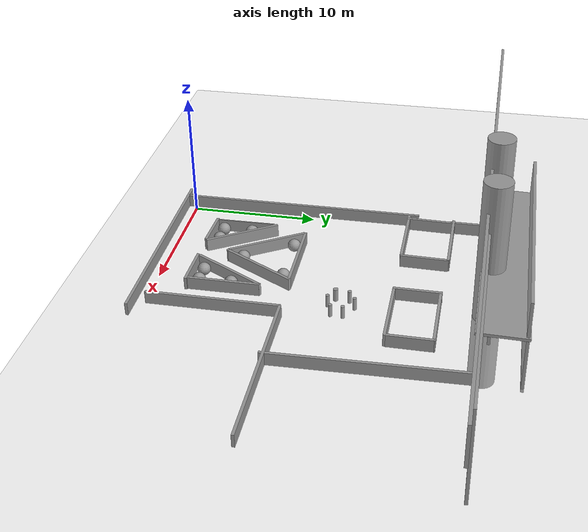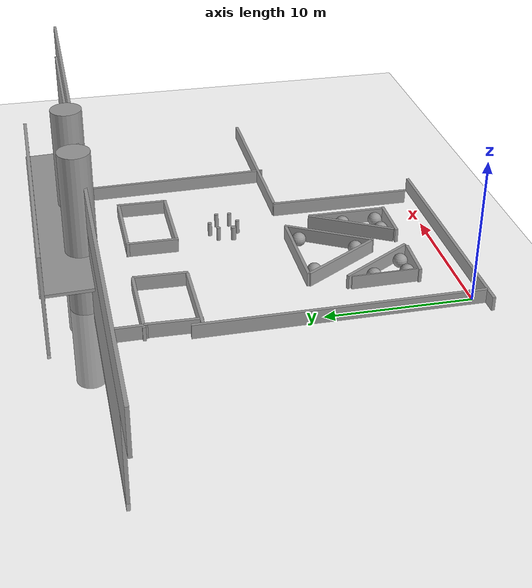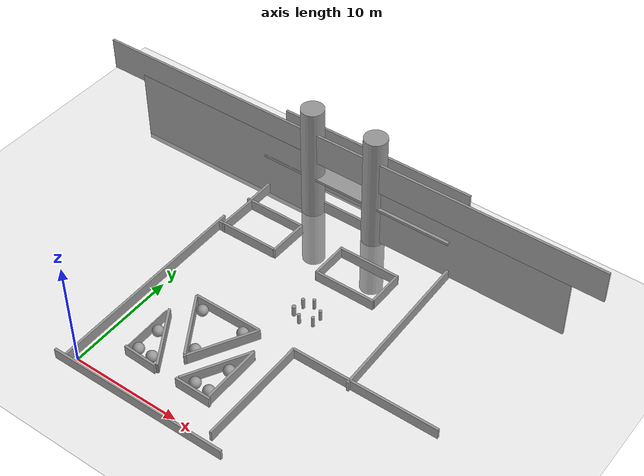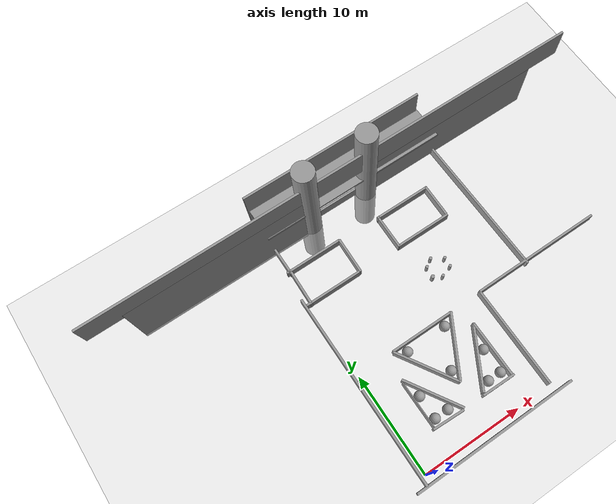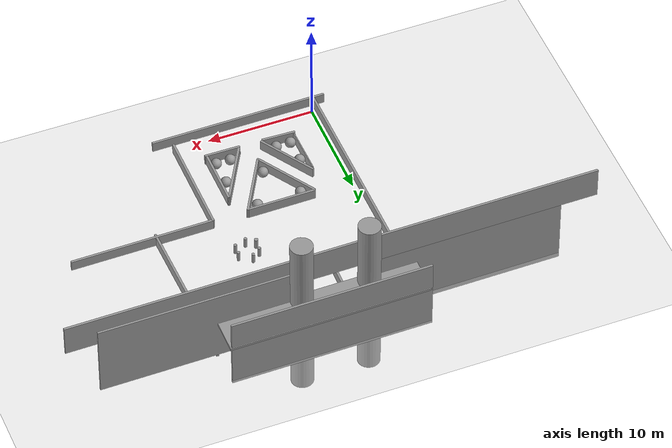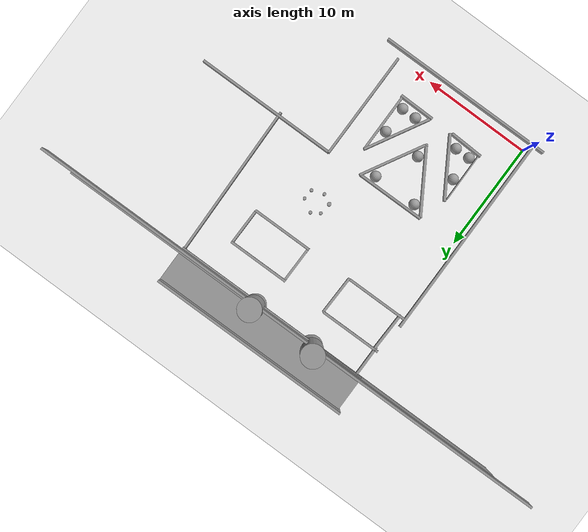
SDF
<sdf version="1.6">
 <world name="default">
  <light name="sun" type="directional">
   <pose>0 0 10 0 -0 0</pose>
   <diffuse>0.8 0.8 0.8 1</diffuse>
   <specular>0.1 0.1 0.1 1</specular>
   <attenuation>
    <range>1000</range>
    <constant>0.9</constant>
    <linear>0.01</linear>
    <quadratic>0.001</quadratic>
   </attenuation>
   <direction>-0.5 0.5 -1</direction>
  </light>
  <model name="ground_plane">
   <static>1</static>
   <link name="link">
    <collision name="collision">
     <geometry><plane><normal>0 0 1</normal><size>100 100</size></plane></geometry>
     <surface><friction><ode><mu>100</mu><mu2>50</mu2></ode></friction></surface>
    </collision>
    <visual name="visual">
     <cast_shadows>0</cast_shadows>
     <geometry><plane><normal>0 0 1</normal><size>100 100</size></plane></geometry>
     <material>
      <script><uri>file://media/materials/scripts/gazebo.material</uri><name>Gazebo/Grey</name></script>
     </material>
    </visual>
   </link>
  </model>
  <gravity>0 0 -9.8</gravity>
  <magnetic_field>6e-06 2.3e-05 -4.2e-05</magnetic_field>
  <atmosphere type="adiabatic"/>
  <physics name="default_physics" default="0" type="ode">
   <max_step_size>0.001</max_step_size>
   <real_time_factor>1</real_time_factor>
   <real_time_update_rate>1000</real_time_update_rate>
  </physics>
  <scene><ambient>0.4 0.4 0.4 1</ambient><background>0.7 0.7 0.7 1</background><shadows>1</shadows></scene>
  <spherical_coordinates>
   <surface_model>EARTH_WGS84</surface_model>
   <latitude_deg>0</latitude_deg>
   <longitude_deg>0</longitude_deg>
   <elevation>0</elevation>
   <heading_deg>0</heading_deg>
  </spherical_coordinates>
  <model name="unit_box_0_0">
   <pose>2.81156 5.0506 0.498574 -1.2e-05 0.000622 -1.56139</pose>
   <link name="unit_box_0_0::unit_box_0_0::link">
    <inertial>
     <mass>1</mass>
     <inertia>
      <ixx>0.166667</ixx>
      <ixy>0</ixy>
      <ixz>0</ixz>
      <iyy>0.166667</iyy>
      <iyz>0</iyz>
      <izz>0.166667</izz>
     </inertia>
    </inertial>
    <collision name="collision"><geometry><box><size>4.58926 0.099083 1</size></box></geometry></collision>
    <visual name="visual">
     <geometry><box><size>4.58926 0.099083 1</size></box></geometry>
     <material>
      <script><name>Gazebo/Grey</name><uri>file://media/materials/scripts/gazebo.material</uri></script>
     </material>
    </visual>
   </link>
  </model>
  <model name="unit_box_0_0_clone_0">
   <pose>6.80353 -0.769381 0.519734 0 0 -1.56499</pose>
   <link name="unit_box_0_0::link">
    <inertial>
     <mass>1</mass>
     <inertia>
      <ixx>0.166667</ixx>
      <ixy>0</ixy>
      <ixz>0</ixz>
      <iyy>0.166667</iyy>
      <iyz>0</iyz>
      <izz>0.166667</izz>
     </inertia>
    </inertial>
    <collision name="collision"><geometry><box><size>0.217901 16.6093 1</size></box></geometry></collision>
    <visual name="visual">
     <geometry><box><size>0.217901 16.6093 1</size></box></geometry>
     <material>
      <script><name>Gazebo/Grey</name><uri>file://media/materials/scripts/gazebo.material</uri></script>
     </material>
    </visual>
    <kinematic>1</kinematic>
   </link>
  </model>
  <model name="unit_box_0_0_clone_0_clone">
   <pose>4.23661 2.59025 0.499912 -3.1e-05 -1e-06 -1.60929</pose>
   <link name="unit_box_0_0_clone_0_clone::unit_box_0_0::link">
    <inertial>
     <mass>1</mass>
     <inertia>
      <ixx>0.166667</ixx>
      <ixy>0</ixy>
      <ixz>0</ixz>
      <iyy>0.166667</iyy>
      <iyz>0</iyz>
      <izz>0.166667</izz>
     </inertia>
    </inertial>
    <collision name="collision"><geometry><box><size>0.217901 3.14923 1</size></box></geometry></collision>
    <visual name="visual">
     <geometry><box><size>0.217901 3.14923 1</size></box></geometry>
     <material>
      <script><name>Gazebo/Grey</name><uri>file://media/materials/scripts/gazebo.material</uri></script>
     </material>
    </visual>
   </link>
  </model>
  <model name="unit_box_0_0_clone_0_clone_clone">
   <pose>-0.478675 8.91503 0.519734 0 0 -3.13891</pose>
   <link name="unit_box_0_0::link">
    <inertial>
     <mass>1</mass>
     <inertia>
      <ixx>0.166667</ixx>
      <ixy>0</ixy>
      <ixz>0</ixz>
      <iyy>0.166667</iyy>
      <iyz>0</iyz>
      <izz>0.166667</izz>
     </inertia>
    </inertial>
    <collision name="collision"><geometry><box><size>0.217901 19.3756 1</size></box></geometry></collision>
    <visual name="visual">
     <geometry><box><size>0.217901 19.3756 1</size></box></geometry>
     <material>
      <script><name>Gazebo/Grey</name><uri>file://media/materials/scripts/gazebo.material</uri></script>
     </material>
    </visual>
    <kinematic>1</kinematic>
   </link>
  </model>
  <model name="unit_box_0_0_clone_0_clone_clone_0">
   <pose>4.40745 5.11939 0.519734 0 0 -2.58727</pose>
   <link name="unit_box_0_0::link">
    <inertial>
     <mass>1</mass>
     <inertia>
      <ixx>0.166667</ixx>
      <ixy>0</ixy>
      <ixz>0</ixz>
      <iyy>0.166667</iyy>
      <iyz>0</iyz>
      <izz>0.166667</izz>
     </inertia>
    </inertial>
    <collision name="collision"><geometry><box><size>0.217901 5.88443 1</size></box></geometry></collision>
    <visual name="visual">
     <geometry><box><size>0.217901 5.88443 1</size></box></geometry>
     <material>
      <script><name>Gazebo/Grey</name><uri>file://media/materials/scripts/gazebo.material</uri></script>
     </material>
    </visual>
    <kinematic>1</kinematic>
   </link>
  </model>
  <model name="unit_box_0_0_clone_0_clone_clone_1">
   <pose>9.61184 2.52379 0.499686 0.000187 7e-06 -1.58173</pose>
   <link name="unit_box_0_0_clone_0_clone_clone_1::unit_box_0_0_clone_0_clone_clone_1::unit_box_0_0::link">
    <inertial>
     <mass>1</mass>
     <inertia>
      <ixx>0.166667</ixx>
      <ixy>0</ixy>
      <ixz>0</ixz>
      <iyy>0.166667</iyy>
      <iyz>0</iyz>
      <izz>0.166667</izz>
     </inertia>
    </inertial>
    <collision name="collision"><geometry><box><size>0.217901 3.36078 1</size></box></geometry></collision>
    <visual name="visual">
     <geometry><box><size>0.217901 3.36078 1</size></box></geometry>
     <material>
      <script><name>Gazebo/Grey</name><uri>file://media/materials/scripts/gazebo.material</uri></script>
     </material>
    </visual>
   </link>
  </model>
  <model name="unit_box_0_0_clone_0_clone_clone_0_clone">
   <pose>9.6108 5.42741 0.519734 0 -0 2.63398</pose>
   <link name="unit_box_0_0::link">
    <inertial>
     <mass>1</mass>
     <inertia>
      <ixx>0.166667</ixx>
      <ixy>0</ixy>
      <ixz>0</ixz>
      <iyy>0.166667</iyy>
      <iyz>0</iyz>
      <izz>0.166667</izz>
     </inertia>
    </inertial>
    <collision name="collision"><geometry><box><size>0.217901 6.22253 1</size></box></geometry></collision>
    <visual name="visual">
     <geometry><box><size>0.217901 6.22253 1</size></box></geometry>
     <material>
      <script><name>Gazebo/Grey</name><uri>file://media/materials/scripts/gazebo.material</uri></script>
     </material>
    </visual>
    <kinematic>1</kinematic>
   </link>
  </model>
  <model name="unit_box_0_0_clone_0_clone_clone_clone">
   <pose>11.1135 5.36011 0.519734 0 0 -3.13891</pose>
   <link name="unit_box_0_0::link">
    <inertial>
     <mass>1</mass>
     <inertia>
      <ixx>0.166667</ixx>
      <ixy>0</ixy>
      <ixz>0</ixz>
      <iyy>0.166667</iyy>
      <iyz>0</iyz>
      <izz>0.166667</izz>
     </inertia>
    </inertial>
    <collision name="collision"><geometry><box><size>0.217901 5.47289 1</size></box></geometry></collision>
    <visual name="visual">
     <geometry><box><size>0.217901 5.47289 1</size></box></geometry>
     <material>
      <script><name>Gazebo/Grey</name><uri>file://media/materials/scripts/gazebo.material</uri></script>
     </material>
    </visual>
    <kinematic>1</kinematic>
   </link>
  </model>
  <model name="unit_box_0_0_clone_0_clone_clone_0_clone_0">
   <pose>5.30651 7.35911 0.519734 0 0 -2.58727</pose>
   <link name="unit_box_0_0::link">
    <inertial>
     <mass>1</mass>
     <inertia>
      <ixx>0.166667</ixx>
      <ixy>0</ixy>
      <ixz>0</ixz>
      <iyy>0.166667</iyy>
      <iyz>0</iyz>
      <izz>0.166667</izz>
     </inertia>
    </inertial>
    <collision name="collision"><geometry><box><size>0.217901 6.22253 1</size></box></geometry></collision>
    <visual name="visual">
     <geometry><box><size>0.217901 6.22253 1</size></box></geometry>
     <material>
      <script><name>Gazebo/Grey</name><uri>file://media/materials/scripts/gazebo.material</uri></script>
     </material>
    </visual>
    <kinematic>1</kinematic>
   </link>
  </model>
  <model name="unit_box_0_0_clone_0_clone_clone_0_clone_clone">
   <pose>8.58458 7.43206 0.519734 0 -0 2.63398</pose>
   <link name="unit_box_0_0::link">
    <inertial>
     <mass>1</mass>
     <inertia>
      <ixx>0.166667</ixx>
      <ixy>0</ixy>
      <ixz>0</ixz>
      <iyy>0.166667</iyy>
      <iyz>0</iyz>
      <izz>0.166667</izz>
     </inertia>
    </inertial>
    <collision name="collision"><geometry><box><size>0.217901 6.22253 1</size></box></geometry></collision>
    <visual name="visual">
     <geometry><box><size>0.217901 6.22253 1</size></box></geometry>
     <material>
      <script><name>Gazebo/Grey</name><uri>file://media/materials/scripts/gazebo.material</uri></script>
     </material>
    </visual>
    <kinematic>1</kinematic>
   </link>
  </model>
  <model name="unit_cylinder_0">
   <pose>7.00457 4.66781 0.494908 4e-06 3.2e-05 0.119616</pose>
   <link name="unit_cylinder_0::link">
    <inertial>
     <mass>1</mass>
     <inertia><ixx>0.145833</ixx><ixy>0</ixy><ixz>0</ixz><iyy>0.145833</iyy><iyz>0</iyz><izz>0.125</izz></inertia>
    </inertial>
    <collision name="collision">
     <geometry><cylinder><radius>0.129951</radius><length>1</length></cylinder></geometry>
    </collision>
    <visual name="visual">
     <geometry><cylinder><radius>0.129951</radius><length>1</length></cylinder></geometry>
     <material>
      <script><name>Gazebo/Grey</name><uri>file://media/materials/scripts/gazebo.material</uri></script>
     </material>
    </visual>
    <kinematic>1</kinematic>
   </link>
  </model>
  <model name="unit_box_0_0_clone_0_clone_0">
   <pose>6.82149 10.0717 0.519734 0 0 -1.56499</pose>
   <link name="unit_box_0_0::link">
    <inertial>
     <mass>1</mass>
     <inertia>
      <ixx>0.166667</ixx>
      <ixy>0</ixy>
      <ixz>0</ixz>
      <iyy>0.166667</iyy>
      <iyz>0</iyz>
      <izz>0.166667</izz>
     </inertia>
    </inertial>
    <collision name="collision"><geometry><box><size>0.217901 6.35573 1</size></box></geometry></collision>
    <visual name="visual">
     <geometry><box><size>0.217901 6.35573 1</size></box></geometry>
     <material>
      <script><name>Gazebo/Grey</name><uri>file://media/materials/scripts/gazebo.material</uri></script>
     </material>
    </visual>
    <kinematic>1</kinematic>
   </link>
  </model>
  <model name="unit_box_0_0_clone">
   <pose>13.3879 5.15517 0.519734 0 -0 0</pose>
   <link name="unit_box_0_0::link">
    <inertial>
     <mass>1</mass>
     <inertia>
      <ixx>0.166667</ixx>
      <ixy>0</ixy>
      <ixz>0</ixz>
      <iyy>0.166667</iyy>
      <iyz>0</iyz>
      <izz>0.166667</izz>
     </inertia>
    </inertial>
    <collision name="collision"><geometry><box><size>0.217901 10.0929 1</size></box></geometry></collision>
    <visual name="visual">
     <geometry><box><size>0.217901 10.0929 1</size></box></geometry>
     <material>
      <script><name>Gazebo/Grey</name><uri>file://media/materials/scripts/gazebo.material</uri></script>
     </material>
    </visual>
    <kinematic>1</kinematic>
   </link>
  </model>
  <model name="unit_sphere_0">
   <pose>4.78357 9.37219 0.5 -0.01173 0.009222 -0.001407</pose>
   <link name="link">
    <inertial>
     <mass>1</mass>
     <inertia><ixx>0.1</ixx><ixy>0</ixy><ixz>0</ixz><iyy>0.1</iyy><iyz>0</iyz><izz>0.1</izz></inertia>
    </inertial>
    <collision name="collision"><geometry><sphere><radius>0.5</radius></sphere></geometry></collision>
    <visual name="visual">
     <geometry><sphere><radius>0.5</radius></sphere></geometry>
     <material>
      <script><name>Gazebo/Grey</name><uri>file://media/materials/scripts/gazebo.material</uri></script>
     </material>
    </visual>
   </link>
  </model>
  <model name="unit_sphere_1">
   <pose>8.90003 9.40731 0.5 0 -0 0</pose>
   <link name="link">
    <inertial>
     <mass>1</mass>
     <inertia><ixx>0.1</ixx><ixy>0</ixy><ixz>0</ixz><iyy>0.1</iyy><iyz>0</iyz><izz>0.1</izz></inertia>
    </inertial>
    <collision name="collision"><geometry><sphere><radius>0.5</radius></sphere></geometry></collision>
    <visual name="visual">
     <geometry><sphere><radius>0.5</radius></sphere></geometry>
     <material>
      <script><name>Gazebo/Grey</name><uri>file://media/materials/scripts/gazebo.material</uri></script>
     </material>
    </visual>
   </link>
  </model>
  <model name="unit_sphere_2">
   <pose>7.00291 5.85331 0.5 -0.010237 -0.009397 0.001189</pose>
   <link name="link">
    <inertial>
     <mass>1</mass>
     <inertia><ixx>0.1</ixx><ixy>0</ixy><ixz>0</ixz><iyy>0.1</iyy><iyz>0</iyz><izz>0.1</izz></inertia>
    </inertial>
    <collision name="collision"><geometry><sphere><radius>0.5</radius></sphere></geometry></collision>
    <visual name="visual">
     <geometry><sphere><radius>0.5</radius></sphere></geometry>
     <material>
      <script><name>Gazebo/Grey</name><uri>file://media/materials/scripts/gazebo.material</uri></script>
     </material>
    </visual>
   </link>
  </model>
  <model name="unit_sphere_3">
   <pose>3.37924 5.62335 0.5 1.12151 0.193173 0.135979</pose>
   <link name="link">
    <inertial>
     <mass>1</mass>
     <inertia><ixx>0.1</ixx><ixy>0</ixy><ixz>0</ixz><iyy>0.1</iyy><iyz>0</iyz><izz>0.1</izz></inertia>
    </inertial>
    <collision name="collision"><geometry><sphere><radius>0.5</radius></sphere></geometry></collision>
    <visual name="visual">
     <geometry><sphere><radius>0.5</radius></sphere></geometry>
     <material>
      <script><name>Gazebo/Grey</name><uri>file://media/materials/scripts/gazebo.material</uri></script>
     </material>
    </visual>
   </link>
  </model>
  <model name="unit_sphere_4">
   <pose>3.3785 3.32826 0.49999 0.006771 0.056704 0.020034</pose>
   <link name="link">
    <inertial>
     <mass>1</mass>
     <inertia><ixx>0.1</ixx><ixy>0</ixy><ixz>0</ixz><iyy>0.1</iyy><iyz>0</iyz><izz>0.1</izz></inertia>
    </inertial>
    <collision name="collision"><geometry><sphere><radius>0.5</radius></sphere></geometry></collision>
    <visual name="visual">
     <geometry><sphere><radius>0.5</radius></sphere></geometry>
     <material>
      <script><name>Gazebo/Grey</name><uri>file://media/materials/scripts/gazebo.material</uri></script>
     </material>
    </visual>
   </link>
  </model>
  <model name="unit_sphere_5">
   <pose>4.75326 3.34246 0.5 0 -0 0</pose>
   <link name="link">
    <inertial>
     <mass>1</mass>
     <inertia><ixx>0.1</ixx><ixy>0</ixy><ixz>0</ixz><iyy>0.1</iyy><iyz>0</iyz><izz>0.1</izz></inertia>
    </inertial>
    <collision name="collision"><geometry><sphere><radius>0.5</radius></sphere></geometry></collision>
    <visual name="visual">
     <geometry><sphere><radius>0.5</radius></sphere></geometry>
     <material>
      <script><name>Gazebo/Grey</name><uri>file://media/materials/scripts/gazebo.material</uri></script>
     </material>
    </visual>
   </link>
  </model>
  <model name="unit_sphere_6">
   <pose>10.5034 5.77939 0.5 0.069496 -0.019261 0.001034</pose>
   <link name="link">
    <inertial>
     <mass>1</mass>
     <inertia><ixx>0.1</ixx><ixy>0</ixy><ixz>0</ixz><iyy>0.1</iyy><iyz>0</iyz><izz>0.1</izz></inertia>
    </inertial>
    <collision name="collision"><geometry><sphere><radius>0.5</radius></sphere></geometry></collision>
    <visual name="visual">
     <geometry><sphere><radius>0.5</radius></sphere></geometry>
     <material>
      <script><name>Gazebo/Grey</name><uri>file://media/materials/scripts/gazebo.material</uri></script>
     </material>
    </visual>
   </link>
  </model>
  <model name="unit_sphere_7">
   <pose>9.15693 3.32517 0.5 -0.025136 -0.0004 -6.6e-05</pose>
   <link name="link">
    <inertial>
     <mass>1</mass>
     <inertia><ixx>0.1</ixx><ixy>0</ixy><ixz>0</ixz><iyy>0.1</iyy><iyz>0</iyz><izz>0.1</izz></inertia>
    </inertial>
    <collision name="collision"><geometry><sphere><radius>0.5</radius></sphere></geometry></collision>
    <visual name="visual">
     <geometry><sphere><radius>0.5</radius></sphere></geometry>
     <material>
      <script><name>Gazebo/Grey</name><uri>file://media/materials/scripts/gazebo.material</uri></script>
     </material>
    </visual>
   </link>
  </model>
  <model name="unit_sphere_8">
   <pose>10.5099 3.33272 0.5 -0.059354 -0.10207 0.127266</pose>
   <link name="link">
    <inertial>
     <mass>1</mass>
     <inertia><ixx>0.1</ixx><ixy>0</ixy><ixz>0</ixz><iyy>0.1</iyy><iyz>0</iyz><izz>0.1</izz></inertia>
    </inertial>
    <collision name="collision"><geometry><sphere><radius>0.5</radius></sphere></geometry></collision>
    <visual name="visual">
     <geometry><sphere><radius>0.5</radius></sphere></geometry>
     <material>
      <script><name>Gazebo/Grey</name><uri>file://media/materials/scripts/gazebo.material</uri></script>
     </material>
    </visual>
   </link>
  </model>
  <model name="unit_box_0_0_clone_0_clone_2">
   <pose>20.0607 10.2016 0.519734 0 0 -1.56499</pose>
   <link name="unit_box_0_0::link">
    <inertial>
     <mass>1</mass>
     <inertia>
      <ixx>0.166667</ixx>
      <ixy>0</ixy>
      <ixz>0</ixz>
      <iyy>0.166667</iyy>
      <iyz>0</iyz>
      <izz>0.166667</izz>
     </inertia>
    </inertial>
    <collision name="collision"><geometry><box><size>0.217901 13.3614 1</size></box></geometry></collision>
    <visual name="visual">
     <geometry><box><size>0.217901 13.3614 1</size></box></geometry>
     <material>
      <script><name>Gazebo/Grey</name><uri>file://media/materials/scripts/gazebo.material</uri></script>
     </material>
    </visual>
    <kinematic>1</kinematic>
   </link>
  </model>
  <model name="unit_cylinder_1_clone_2">
   <pose>10.6943 13.7274 0.482981 0 0 -1e-06</pose>
   <link name="unit_cylinder_1_clone_2::link">
    <inertial>
     <mass>1</mass>
     <inertia><ixx>0.145833</ixx><ixy>0</ixy><ixz>0</ixz><iyy>0.145833</iyy><iyz>0</iyz><izz>0.125</izz></inertia>
    </inertial>
    <collision name="collision">
     <geometry><cylinder><radius>0.183627</radius><length>1</length></cylinder></geometry>
    </collision>
    <visual name="visual">
     <geometry><cylinder><radius>0.183627</radius><length>1</length></cylinder></geometry>
     <material>
      <script><name>Gazebo/Grey</name><uri>file://media/materials/scripts/gazebo.material</uri></script>
     </material>
    </visual>
    <kinematic>1</kinematic>
   </link>
  </model>
  <model name="unit_cylinder_1_clone_2_clone">
   <pose>11.5409 13.277 0.482981 0 0 -1e-06</pose>
   <link name="unit_cylinder_1_clone_2::link">
    <inertial>
     <mass>1</mass>
     <inertia><ixx>0.145833</ixx><ixy>0</ixy><ixz>0</ixz><iyy>0.145833</iyy><iyz>0</iyz><izz>0.125</izz></inertia>
    </inertial>
    <collision name="collision">
     <geometry><cylinder><radius>0.146145</radius><length>1</length></cylinder></geometry>
    </collision>
    <visual name="visual">
     <geometry><cylinder><radius>0.146145</radius><length>1</length></cylinder></geometry>
     <material>
      <script><name>Gazebo/Grey</name><uri>file://media/materials/scripts/gazebo.material</uri></script>
     </material>
    </visual>
    <kinematic>1</kinematic>
   </link>
  </model>
  <model name="unit_cylinder_1_clone_2_clone_0">
   <pose>12.6409 13.668 0.482981 0 0 -1e-06</pose>
   <link name="unit_cylinder_1_clone_2::link">
    <inertial>
     <mass>1</mass>
     <inertia><ixx>0.145833</ixx><ixy>0</ixy><ixz>0</ixz><iyy>0.145833</iyy><iyz>0</iyz><izz>0.125</izz></inertia>
    </inertial>
    <collision name="collision">
     <geometry><cylinder><radius>0.146145</radius><length>1</length></cylinder></geometry>
    </collision>
    <visual name="visual">
     <geometry><cylinder><radius>0.146145</radius><length>1</length></cylinder></geometry>
     <material>
      <script><name>Gazebo/Grey</name><uri>file://media/materials/scripts/gazebo.material</uri></script>
     </material>
    </visual>
    <kinematic>1</kinematic>
   </link>
  </model>
  <model name="unit_cylinder_1_clone_2_clone_1">
   <pose>12.6988 14.5896 0.482981 0 0 -1e-06</pose>
   <link name="unit_cylinder_1_clone_2::link">
    <inertial>
     <mass>1</mass>
     <inertia><ixx>0.145833</ixx><ixy>0</ixy><ixz>0</ixz><iyy>0.145833</iyy><iyz>0</iyz><izz>0.125</izz></inertia>
    </inertial>
    <collision name="collision">
     <geometry><cylinder><radius>0.146145</radius><length>1</length></cylinder></geometry>
    </collision>
    <visual name="visual">
     <geometry><cylinder><radius>0.146145</radius><length>1</length></cylinder></geometry>
     <material>
      <script><name>Gazebo/Grey</name><uri>file://media/materials/scripts/gazebo.material</uri></script>
     </material>
    </visual>
    <kinematic>1</kinematic>
   </link>
  </model>
  <model name="unit_cylinder_1_clone_2_clone_2">
   <pose>11.5701 15.2714 0.482981 0 0 -1e-06</pose>
   <link name="unit_cylinder_1_clone_2::link">
    <inertial>
     <mass>1</mass>
     <inertia><ixx>0.145833</ixx><ixy>0</ixy><ixz>0</ixz><iyy>0.145833</iyy><iyz>0</iyz><izz>0.125</izz></inertia>
    </inertial>
    <collision name="collision">
     <geometry><cylinder><radius>0.146145</radius><length>1</length></cylinder></geometry>
    </collision>
    <visual name="visual">
     <geometry><cylinder><radius>0.146145</radius><length>1</length></cylinder></geometry>
     <material>
      <script><name>Gazebo/Grey</name><uri>file://media/materials/scripts/gazebo.material</uri></script>
     </material>
    </visual>
    <kinematic>1</kinematic>
   </link>
  </model>
  <model name="unit_cylinder_1_clone_2_clone_3">
   <pose>10.8098 14.7862 0.482981 0 0 -1e-06</pose>
   <link name="unit_cylinder_1_clone_2::link">
    <inertial>
     <mass>1</mass>
     <inertia><ixx>0.145833</ixx><ixy>0</ixy><ixz>0</ixz><iyy>0.145833</iyy><iyz>0</iyz><izz>0.125</izz></inertia>
    </inertial>
    <collision name="collision">
     <geometry><cylinder><radius>0.146145</radius><length>1</length></cylinder></geometry>
    </collision>
    <visual name="visual">
     <geometry><cylinder><radius>0.146145</radius><length>1</length></cylinder></geometry>
     <material>
      <script><name>Gazebo/Grey</name><uri>file://media/materials/scripts/gazebo.material</uri></script>
     </material>
    </visual>
    <kinematic>1</kinematic>
   </link>
  </model>
  <model name="unit_box_0_0_clone_0_clone_2_clone">
   <pose>12.6385 17.9268 0.519734 0 0 -1.56499</pose>
   <link name="unit_box_0_0::link">
    <inertial>
     <mass>1</mass>
     <inertia>
      <ixx>0.166667</ixx>
      <ixy>0</ixy>
      <ixz>0</ixz>
      <iyy>0.166667</iyy>
      <iyz>0</iyz>
      <izz>0.166667</izz>
     </inertia>
    </inertial>
    <collision name="collision"><geometry><box><size>0.217901 5.69785 1</size></box></geometry></collision>
    <visual name="visual">
     <geometry><box><size>0.217901 5.69785 1</size></box></geometry>
     <material>
      <script><name>Gazebo/Grey</name><uri>file://media/materials/scripts/gazebo.material</uri></script>
     </material>
    </visual>
    <kinematic>1</kinematic>
   </link>
  </model>
  <model name="unit_box_0_0_clone_0_clone_2_clone_clone">
   <pose>2.48911 17.8697 0.519734 0 0 -1.56499</pose>
   <link name="unit_box_0_0::link">
    <inertial>
     <mass>1</mass>
     <inertia>
      <ixx>0.166667</ixx>
      <ixy>0</ixy>
      <ixz>0</ixz>
      <iyy>0.166667</iyy>
      <iyz>0</iyz>
      <izz>0.166667</izz>
     </inertia>
    </inertial>
    <collision name="collision"><geometry><box><size>0.217901 5.79612 1</size></box></geometry></collision>
    <visual name="visual">
     <geometry><box><size>0.217901 5.79612 1</size></box></geometry>
     <material>
      <script><name>Gazebo/Grey</name><uri>file://media/materials/scripts/gazebo.material</uri></script>
     </material>
    </visual>
    <kinematic>1</kinematic>
   </link>
  </model>
  <model name="unit_box_0_0_clone_0_clone_2_clone_clone_clone">
   <pose>0.072625 22.6573 0.519734 0 0 -3.13994</pose>
   <link name="unit_box_0_0::link">
    <inertial>
     <mass>1</mass>
     <inertia>
      <ixx>0.166667</ixx>
      <ixy>0</ixy>
      <ixz>0</ixz>
      <iyy>0.166667</iyy>
      <iyz>0</iyz>
      <izz>0.166667</izz>
     </inertia>
    </inertial>
    <collision name="collision"><geometry><box><size>0.217901 2.86776 1</size></box></geometry></collision>
    <visual name="visual">
     <geometry><box><size>0.217901 2.86776 1</size></box></geometry>
     <material>
      <script><name>Gazebo/Grey</name><uri>file://media/materials/scripts/gazebo.material</uri></script>
     </material>
    </visual>
    <kinematic>1</kinematic>
   </link>
  </model>
  <model name="unit_box_0_0_clone_0_clone_2_clone_clone_clone_0">
   <pose>2.66417 21.4811 0.519734 0 0 -1.56499</pose>
   <link name="unit_box_0_0::link">
    <inertial>
     <mass>1</mass>
     <inertia>
      <ixx>0.166667</ixx>
      <ixy>0</ixy>
      <ixz>0</ixz>
      <iyy>0.166667</iyy>
      <iyz>0</iyz>
      <izz>0.166667</izz>
     </inertia>
    </inertial>
    <collision name="collision"><geometry><box><size>0.217901 5.79612 1</size></box></geometry></collision>
    <visual name="visual">
     <geometry><box><size>0.217901 5.79612 1</size></box></geometry>
     <material>
      <script><name>Gazebo/Grey</name><uri>file://media/materials/scripts/gazebo.material</uri></script>
     </material>
    </visual>
    <kinematic>1</kinematic>
   </link>
  </model>
  <model name="unit_box_0_0_clone_0_clone_2_clone_clone_clone_1">
   <pose>12.647 21.3413 0.519734 0 0 -1.56499</pose>
   <link name="unit_box_0_0::link">
    <inertial>
     <mass>1</mass>
     <inertia>
      <ixx>0.166667</ixx>
      <ixy>0</ixy>
      <ixz>0</ixz>
      <iyy>0.166667</iyy>
      <iyz>0</iyz>
      <izz>0.166667</izz>
     </inertia>
    </inertial>
    <collision name="collision"><geometry><box><size>0.217901 5.79612 1</size></box></geometry></collision>
    <visual name="visual">
     <geometry><box><size>0.217901 5.79612 1</size></box></geometry>
     <material>
      <script><name>Gazebo/Grey</name><uri>file://media/materials/scripts/gazebo.material</uri></script>
     </material>
    </visual>
    <kinematic>1</kinematic>
   </link>
  </model>
  <model name="unit_box_0_0_clone_0_clone_2_clone_clone_clone_2">
   <pose>9.85965 19.6294 0.519734 0 -0 3.1337</pose>
   <link name="unit_box_0_0::link">
    <inertial>
     <mass>1</mass>
     <inertia>
      <ixx>0.166667</ixx>
      <ixy>0</ixy>
      <ixz>0</ixz>
      <iyy>0.166667</iyy>
      <iyz>0</iyz>
      <izz>0.166667</izz>
     </inertia>
    </inertial>
    <collision name="collision"><geometry><box><size>0.217901 3.62616 1</size></box></geometry></collision>
    <visual name="visual">
     <geometry><box><size>0.217901 3.62616 1</size></box></geometry>
     <material>
      <script><name>Gazebo/Grey</name><uri>file://media/materials/scripts/gazebo.material</uri></script>
     </material>
    </visual>
    <kinematic>1</kinematic>
   </link>
  </model>
  <model name="unit_box_0_0_clone_0_clone_2_clone_clone_clone_3">
   <pose>5.52637 19.6732 0.519734 0 -0 3.11803</pose>
   <link name="unit_box_0_0::link">
    <inertial>
     <mass>1</mass>
     <inertia>
      <ixx>0.166667</ixx>
      <ixy>0</ixy>
      <ixz>0</ixz>
      <iyy>0.166667</iyy>
      <iyz>0</iyz>
      <izz>0.166667</izz>
     </inertia>
    </inertial>
    <collision name="collision"><geometry><box><size>0.217901 3.71626 1</size></box></geometry></collision>
    <visual name="visual">
     <geometry><box><size>0.217901 3.71626 1</size></box></geometry>
     <material>
      <script><name>Gazebo/Grey</name><uri>file://media/materials/scripts/gazebo.material</uri></script>
     </material>
    </visual>
    <kinematic>1</kinematic>
   </link>
  </model>
  <model name="unit_box_0_0_clone_0_clone_2_clone_clone_clone_2_clone">
   <pose>15.4275 19.6976 0.519734 0 -0 3.1337</pose>
   <link name="unit_box_0_0::link">
    <inertial>
     <mass>1</mass>
     <inertia>
      <ixx>0.166667</ixx>
      <ixy>0</ixy>
      <ixz>0</ixz>
      <iyy>0.166667</iyy>
      <iyz>0</iyz>
      <izz>0.166667</izz>
     </inertia>
    </inertial>
    <collision name="collision"><geometry><box><size>0.217901 3.3624 1</size></box></geometry></collision>
    <visual name="visual">
     <geometry><box><size>0.217901 3.3624 1</size></box></geometry>
     <material>
      <script><name>Gazebo/Grey</name><uri>file://media/materials/scripts/gazebo.material</uri></script>
     </material>
    </visual>
    <kinematic>1</kinematic>
   </link>
  </model>
  <model name="unit_box_0_0_clone_0_clone_2_clone_clone_clone_3_clone">
   <pose>0.105914 19.5913 0.519734 0 -0 3.11803</pose>
   <link name="unit_box_0_0::link">
    <inertial>
     <mass>1</mass>
     <inertia>
      <ixx>0.166667</ixx>
      <ixy>0</ixy>
      <ixz>0</ixz>
      <iyy>0.166667</iyy>
      <iyz>0</iyz>
      <izz>0.166667</izz>
     </inertia>
    </inertial>
    <collision name="collision"><geometry><box><size>0.217901 3.7402 1</size></box></geometry></collision>
    <visual name="visual">
     <geometry><box><size>0.217901 3.7402 1</size></box></geometry>
     <material>
      <script><name>Gazebo/Grey</name><uri>file://media/materials/scripts/gazebo.material</uri></script>
     </material>
    </visual>
    <kinematic>1</kinematic>
   </link>
  </model>
  <model name="unit_box_0_0_clone_0_clone_3">
   <pose>9.17699 25.0029 0.519734 0 0 -1.56499</pose>
   <link name="unit_box_0_0::link">
    <inertial>
     <mass>1</mass>
     <inertia>
      <ixx>0.166667</ixx>
      <ixy>0</ixy>
      <ixz>0</ixz>
      <iyy>0.166667</iyy>
      <iyz>0</iyz>
      <izz>0.166667</izz>
     </inertia>
    </inertial>
    <collision name="collision"><geometry><box><size>0.217901 9.59796 1.15282</size></box></geometry></collision>
    <visual name="visual">
     <geometry><box><size>0.217901 9.59796 1.15282</size></box></geometry>
     <material>
      <script><name>Gazebo/Grey</name><uri>file://media/materials/scripts/gazebo.material</uri></script>
     </material>
    </visual>
    <kinematic>1</kinematic>
   </link>
  </model>
  <model name="unit_box_0_0_clone_0_clone_2_clone_0">
   <pose>18.5811 17.1854 0.519734 0 -0 0.021899</pose>
   <link name="unit_box_0_0::link">
    <inertial>
     <mass>1</mass>
     <inertia>
      <ixx>0.166667</ixx>
      <ixy>0</ixy>
      <ixz>0</ixz>
      <iyy>0.166667</iyy>
      <iyz>0</iyz>
      <izz>0.166667</izz>
     </inertia>
    </inertial>
    <collision name="collision"><geometry><box><size>0.217901 14.6432 1</size></box></geometry></collision>
    <visual name="visual">
     <geometry><box><size>0.217901 14.6432 1</size></box></geometry>
     <material>
      <script><name>Gazebo/Grey</name><uri>file://media/materials/scripts/gazebo.material</uri></script>
     </material>
    </visual>
    <kinematic>1</kinematic>
   </link>
  </model>
  <model name="unit_cylinder_1_clone_2_clone_1_clone_clone">
   <pose>10.8662 24.6216 3.05189 0 0 -1e-06</pose>
   <link name="unit_cylinder_1_clone_2::link">
    <inertial>
     <mass>1</mass>
     <inertia><ixx>0.145833</ixx><ixy>0</ixy><ixz>0</ixz><iyy>0.145833</iyy><iyz>0</iyz><izz>0.125</izz></inertia>
    </inertial>
    <collision name="collision">
     <geometry><cylinder><radius>0.0205915</radius><length>0.055078</length></cylinder></geometry>
    </collision>
    <visual name="visual">
     <geometry><cylinder><radius>0.0205915</radius><length>0.055078</length></cylinder></geometry>
     <material>
      <script><name>Gazebo/Grey</name><uri>file://media/materials/scripts/gazebo.material</uri></script>
     </material>
    </visual>
    <kinematic>1</kinematic>
   </link>
  </model>
  <model name="unit_cylinder_1_clone_2_clone_1_clone_clone_clone">
   <pose>4.42652 24.6948 2.5534 0 0 -1e-06</pose>
   <link name="unit_cylinder_1_clone_2::link">
    <inertial>
     <mass>1</mass>
     <inertia><ixx>0.145833</ixx><ixy>0</ixy><ixz>0</ixz><iyy>0.145833</iyy><iyz>0</iyz><izz>0.125</izz></inertia>
    </inertial>
    <collision name="collision">
     <geometry><cylinder><radius>1.03724</radius><length>17.0715</length></cylinder></geometry>
    </collision>
    <visual name="visual">
     <geometry><cylinder><radius>1.03724</radius><length>17.0715</length></cylinder></geometry>
     <material>
      <script><name>Gazebo/Grey</name><uri>file://media/materials/scripts/gazebo.material</uri></script>
     </material>
    </visual>
    <kinematic>1</kinematic>
   </link>
  </model>
  <model name="unit_box_0_0_clone_0_clone_3_clone">
   <pose>9.06306 25.7995 4.11795 3.14159 -1.54377 1.5766</pose>
   <link name="unit_box_0_0::link">
    <inertial>
     <mass>1</mass>
     <inertia>
      <ixx>0.166667</ixx>
      <ixy>0</ixy>
      <ixz>0</ixz>
      <iyy>0.166667</iyy>
      <iyz>0</iyz>
      <izz>0.166667</izz>
     </inertia>
    </inertial>
    <collision name="collision"><geometry><box><size>0.217901 18.6005 3.58747</size></box></geometry></collision>
    <visual name="visual">
     <geometry><box><size>0.217901 18.6005 3.58747</size></box></geometry>
     <material>
      <script><name>Gazebo/Grey</name><uri>file://media/materials/scripts/gazebo.material</uri></script>
     </material>
    </visual>
    <kinematic>1</kinematic>
   </link>
  </model>
  <model name="unit_box_0_0_clone_0_clone_3_clone_0">
   <pose>8.92372 27.3964 3.27717 0 0 -1.56499</pose>
   <link name="unit_box_0_0::link">
    <inertial>
     <mass>1</mass>
     <inertia>
      <ixx>0.166667</ixx>
      <ixy>0</ixy>
      <ixz>0</ixz>
      <iyy>0.166667</iyy>
      <iyz>0</iyz>
      <izz>0.166667</izz>
     </inertia>
    </inertial>
    <collision name="collision"><geometry><box><size>0.217901 18.6005 7.2313</size></box></geometry></collision>
    <visual name="visual">
     <geometry><box><size>0.217901 18.6005 7.2313</size></box></geometry>
     <material>
      <script><name>Gazebo/Grey</name><uri>file://media/materials/scripts/gazebo.material</uri></script>
     </material>
    </visual>
    <kinematic>1</kinematic>
   </link>
  </model>
  <model name="unit_box_0_0_clone_0_clone_3_clone_0_clone">
   <pose>-4.5214 24.121 3.06468 0 0 -1.56499</pose>
   <link name="unit_box_0_0::link">
    <inertial>
     <mass>1</mass>
     <inertia>
      <ixx>0.166667</ixx>
      <ixy>0</ixy>
      <ixz>0</ixz>
      <iyy>0.166667</iyy>
      <iyz>0</iyz>
      <izz>0.166667</izz>
     </inertia>
    </inertial>
    <collision name="collision"><geometry><box><size>0.217901 18.6005 7.2313</size></box></geometry></collision>
    <visual name="visual">
     <geometry><box><size>0.217901 18.6005 7.2313</size></box></geometry>
     <material>
      <script><name>Gazebo/Grey</name><uri>file://media/materials/scripts/gazebo.material</uri></script>
     </material>
    </visual>
    <kinematic>1</kinematic>
   </link>
  </model>
  <model name="unit_box_0_0_clone_0_clone_3_clone_0_clone_0">
   <pose>19.8936 24.4714 3.90934 0 0 -1.56499</pose>
   <link name="unit_box_0_0::link">
    <inertial>
     <mass>1</mass>
     <inertia>
      <ixx>0.166667</ixx>
      <ixy>0</ixy>
      <ixz>0</ixz>
      <iyy>0.166667</iyy>
      <iyz>0</iyz>
      <izz>0.166667</izz>
     </inertia>
    </inertial>
    <collision name="collision"><geometry><box><size>0.217901 18.6005 7.2313</size></box></geometry></collision>
    <visual name="visual">
     <geometry><box><size>0.217901 18.6005 7.2313</size></box></geometry>
     <material>
      <script><name>Gazebo/Grey</name><uri>file://media/materials/scripts/gazebo.material</uri></script>
     </material>
    </visual>
    <kinematic>1</kinematic>
   </link>
  </model>
  <model name="unit_box_0_0_clone_0_clone_3_clone_0_clone_0_clone">
   <pose>7.41115 24.2042 7.51134 0 0 -1.56499</pose>
   <link name="unit_box_0_0::link">
    <inertial>
     <mass>1</mass>
     <inertia>
      <ixx>0.166667</ixx>
      <ixy>0</ixy>
      <ixz>0</ixz>
      <iyy>0.166667</iyy>
      <iyz>0</iyz>
      <izz>0.166667</izz>
     </inertia>
    </inertial>
    <collision name="collision"><geometry><box><size>0.217901 49.3316 2.99439</size></box></geometry></collision>
    <visual name="visual">
     <geometry><box><size>0.217901 49.3316 2.99439</size></box></geometry>
     <material>
      <script><name>Gazebo/Grey</name><uri>file://media/materials/scripts/gazebo.material</uri></script>
     </material>
    </visual>
    <kinematic>1</kinematic>
   </link>
  </model>
  <model name="unit_cylinder_1_clone_2_clone_1_clone_clone_clone_clone">
   <pose>10.6983 24.7277 2.5534 0 0 -1e-06</pose>
   <link name="unit_cylinder_1_clone_2::link">
    <inertial>
     <mass>1</mass>
     <inertia><ixx>0.145833</ixx><ixy>0</ixy><ixz>0</ixz><iyy>0.145833</iyy><iyz>0</iyz><izz>0.125</izz></inertia>
    </inertial>
    <collision name="collision">
     <geometry><cylinder><radius>1.03724</radius><length>17.0715</length></cylinder></geometry>
    </collision>
    <visual name="visual">
     <geometry><cylinder><radius>1.03724</radius><length>17.0715</length></cylinder></geometry>
     <material>
      <script><name>Gazebo/Grey</name><uri>file://media/materials/scripts/gazebo.material</uri></script>
     </material>
    </visual>
    <kinematic>1</kinematic>
   </link>
  </model>
 </world>
</sdf>
